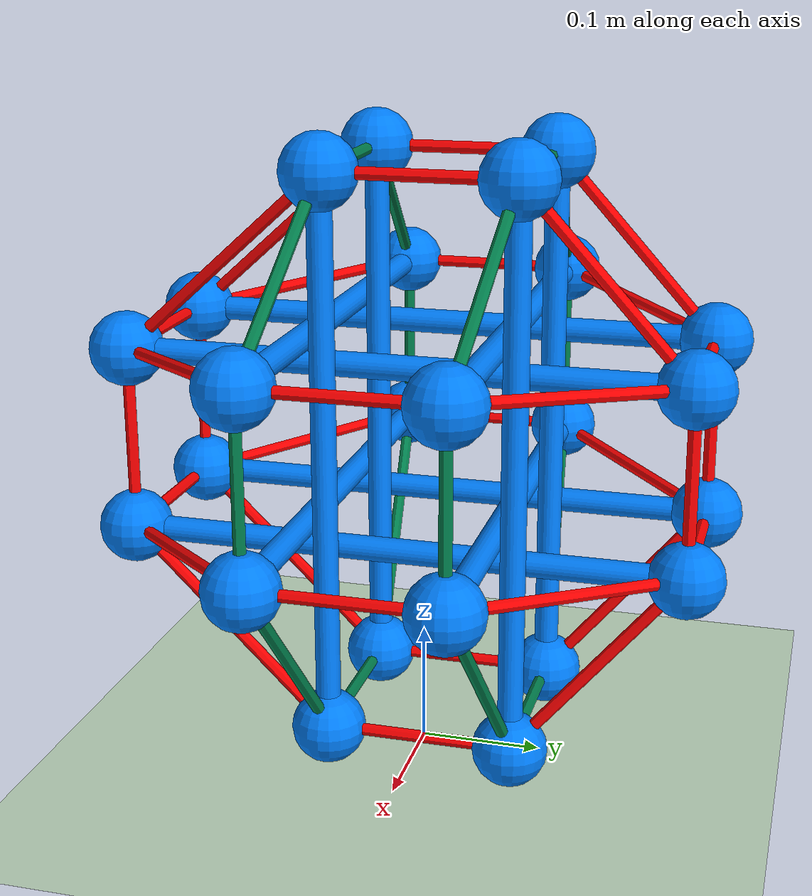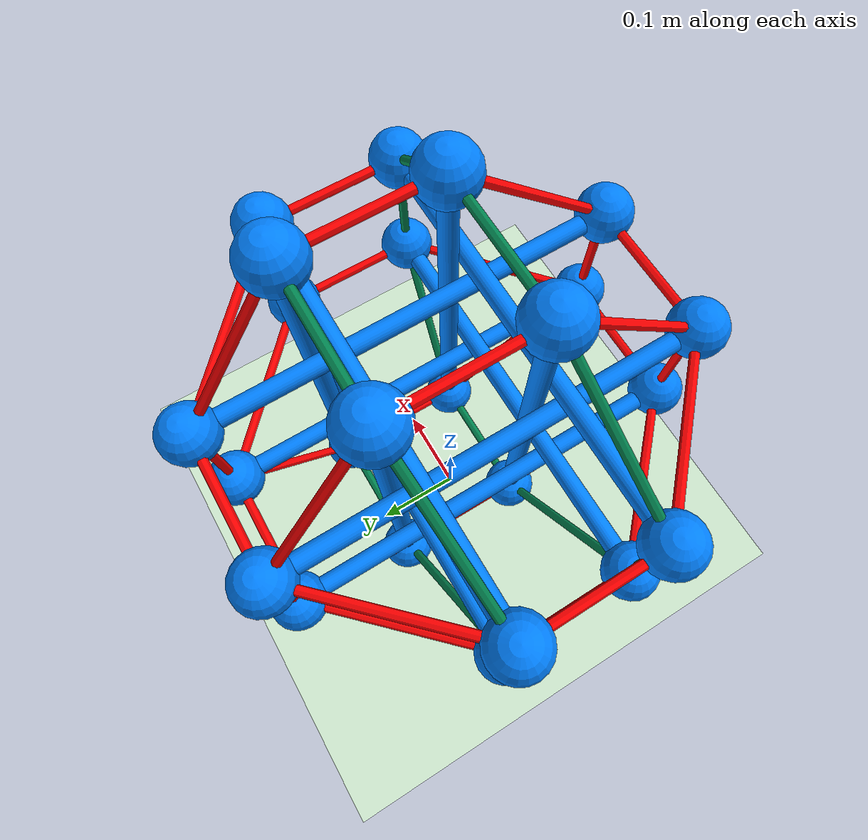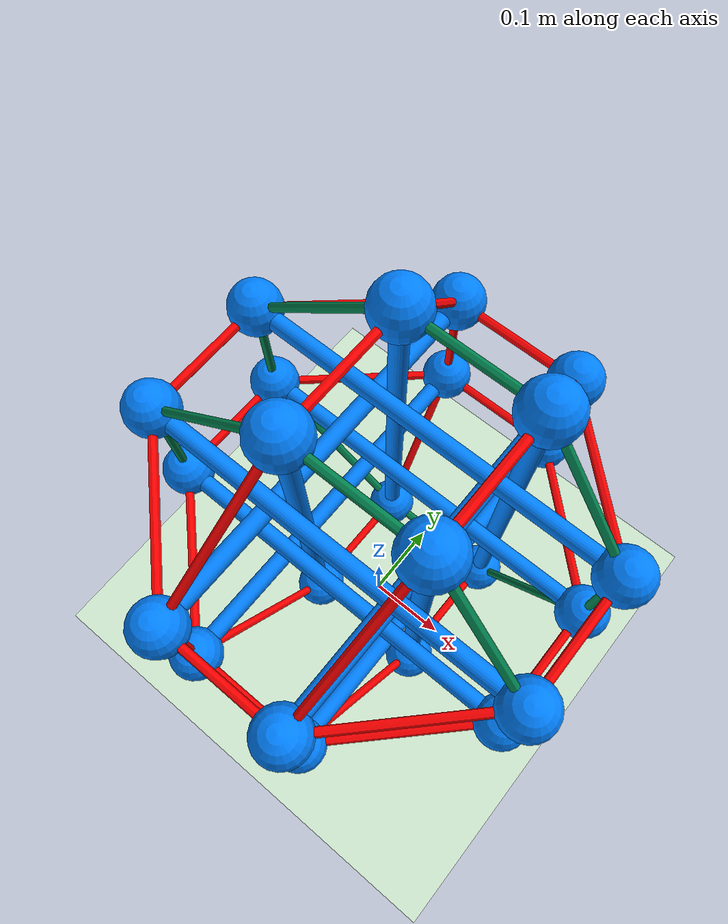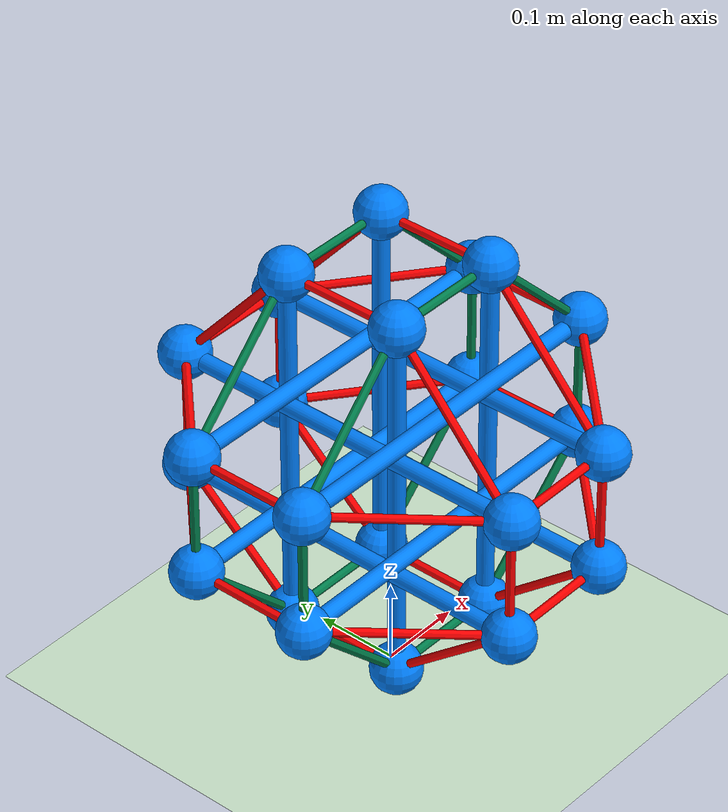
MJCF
<mujoco model="Tensegrity_12bar (v1.0)">
	<compiler angle="degree" inertiafromgeom="true"/>

	<option timestep="0.01" iterations="50" integrator="RK4" solver="PGS"  >
		<flag passive="disable" />
	</option>

	<default>
		<joint armature="1" damping="1"/>
    <geom conaffinity="1" condim="4" contype="1" material="geom" margin="0.001" rgba="0. 0.5 0.99 1"/>
		<site type="sphere" size="0.01"/>
    <tendon limited="true" range="0.1 0.15" width="0.005" rgba="0.99 0. 0. 1"  stiffness="1" damping="0.5"/>
		<general gear="50000" biastype="affine" biasprm="0 0 0" dyntype="filter" dynprm="5 0 0" gainprm="1 0 0" ctrllimited="true" ctrlrange="-1.5 0." />
	</default>

	<asset>
			<texture builtin="gradient" height="100" rgb1=".4 .5 .6" rgb2="0 0 0" type="skybox" width="100"/>
			<texture builtin="flat" height="1278" mark="cross" markrgb="1 1 1" name="texgeom" random="0.01" rgb1="0.8 0.6 0.4" rgb2="0.8 0.6 0.4" type="cube" width="127"/>
			<texture builtin="checker" height="100" name="texplane" rgb1="0 0 0" rgb2="0.8 0.8 0.8" type="2d" width="100"/>
			<material name="MatPlane" reflectance="0.5" shininess="1" specular="1" texrepeat="60 60" texture="texplane"/>
			<material name="geom" texture="texgeom" texuniform="true"/>
	</asset>

    <worldbody>

		<light cutoff="100" diffuse="1 1 1" dir="-0 0 -1.3" directional="true" exponent="1" pos="0 0 1.3" specular=".1 .1 .1"/>
    <geom condim="3" friction="1 1 1" material="MatPlane" name="floor" pos="0 0 0" rgba="0.8 0.9 0.8 1" size="20 20 0.125" type="plane"/>

        <!-- ===== RODS =====-->
        <body name="rod1_2" pos="0 0 0">
      <geom name="r12"  fromto="0.095 0.095 0.50 0.095 0.095 0.05"  density="1000" type="cylinder" size="0.01" />
      <joint name="move1_2" type="free"/>
			<body name="rod1_2_child1">
				<geom name="r12_child1" pos="0.095 0.095 0.50" density="5000" mass="5" type="sphere"  size="0.03" friction="10 0.005 0.0001"/>
				<site name="s1" pos="0.095 0.095 0.50"/>
				<joint type="ball" pos="0.095 0.095 0.50"/>
			</body>
			<body name="rod1_2_child2">
				<geom name="r12_child2" pos="0.095 0.095 0.05" density="5000" mass="5" type="sphere"  size="0.03" friction="10 0.005 0.0001"/>
				<site name="s2" pos="0.095 0.095 0.05" />
				<joint type="ball" pos="0.095 0.095 0.05"/>
			</body>
		</body>

        <body name="rod3_4" pos="0 0 0">
      <geom name="r34"  fromto="-0.055 0.095 0.50 -0.055 0.095 0.05"  density="1000" type="cylinder" size="0.01" />
      <joint name="move3_4" type="free"/>
			<body name="rod3_4_child1">
				<geom name="r34_child1" pos="-0.055 0.095 0.50" density="5000" mass="5" type="sphere"  size="0.03" friction="10 0.005 0.0001"/>
				<site name="s3" pos="-0.055 0.095 0.50"/>
				<joint type="ball" pos="-0.055 0.095 0.50"/>
			</body>
			<body name="rod3_4_child2">
				<geom name="r34_child2" pos="-0.055 0.095 0.05" density="5000" mass="5" type="sphere"  size="0.03" friction="10 0.005 0.0001"/>
				<site name="s4" pos="-0.055 0.095 0.05" />
				<joint type="ball" pos="-0.055 0.095 0.05"/>
			</body>
		</body>

        <body name="rod5_6" pos="0 0 0">
      <geom name="r56"  fromto="-0.055 -0.055 0.50 -0.055 -0.055 0.05"  density="1000" type="cylinder" size="0.01" />
      <joint name="move5_6" type="free"/>
			<body name="rod5_6_child1">
				<geom name="r56_child1" pos="-0.055 -0.055 0.50" density="5000" mass="5" type="sphere"  size="0.03" friction="10 0.005 0.0001"/>
				<site name="s5" pos="-0.055 -0.055 0.50"/>
				<joint type="ball" pos="-0.055 -0.055 0.50"/>
			</body>
			<body name="rod5_6_child2">
				<geom name="r56_child2" pos="-0.055 -0.055 0.05" density="5000" mass="5" type="sphere"  size="0.03" friction="10 0.005 0.0001"/>
				<site name="s6" pos="-0.055 -0.055 0.05" />
				<joint type="ball" pos="-0.055 -0.055 0.05"/>
			</body>
		</body>

        <body name="rod7_8" pos="0 0 0">
      <geom name="r78"  fromto="0.095 -0.055 0.50 0.095 -0.055 0.05"  density="1000" type="cylinder" size="0.01" />
      <joint name="move7_8" type="free"/>
			<body name="rod7_8_child1">
				<geom name="r78_child1" pos="0.095 -0.055 0.50" density="5000" mass="5" type="sphere"  size="0.03" friction="10 0.005 0.0001"/>
				<site name="s7" pos="0.095 -0.055 0.50"/>
				<joint type="ball" pos="0.095 -0.055 0.50"/>
			</body>
			<body name="rod7_8_child2">
				<geom name="r78_child2" pos="0.095 -0.055 0.05" density="5000" mass="5" type="sphere"  size="0.03" friction="10 0.005 0.0001"/>
				<site name="s8" pos="0.095 -0.055 0.05" />
				<joint type="ball" pos="0.095 -0.055 0.05"/>
			</body>
		</body>

        <body name="rod9_10" pos="0 0 0">
      <geom name="r910"  fromto="0.075 0.225 0.35 0.075 -0.225 0.35"  density="1000" type="cylinder" size="0.01" />
      <joint name="move9_10" type="free"/>
			<body name="rod9_10_child1">
				<geom name="r910_child1" pos="0.075 0.225 0.35" density="5000" mass="5" type="sphere"  size="0.03" friction="10 0.005 0.0001"/>
				<site name="s9" pos="0.075 0.225 0.35"/>
				<joint type="ball" pos="0.075 0.225 0.35"/>
			</body>
			<body name="rod9_10_child2">
				<geom name="r910_child2" pos="0.075 -0.225 0.35" density="5000" mass="5" type="sphere"  size="0.03" friction="10 0.005 0.0001"/>
				<site name="s10" pos="0.075 -0.225 0.35" />
				<joint type="ball" pos="0.075 -0.225 0.35"/>
			</body>
		</body>

        <body name="rod11_12" pos="0 0 0">
      <geom name="r1112"  fromto="0.075 0.225 0.20 0.075 -0.225 0.20"  density="1000" type="cylinder" size="0.01" />
      <joint name="move11_12" type="free"/>
			<body name="rod11_12_child1">
				<geom name="r1112_child1" pos="0.075 0.225 0.20" density="5000" mass="5" type="sphere"  size="0.03" friction="10 0.005 0.0001"/>
				<site name="s11" pos="0.075 0.225 0.20"/>
				<joint type="ball" pos="0.075 0.225 0.20"/>
			</body>
			<body name="rod11_12_child2">
				<geom name="r1112_child2" pos="0.075 -0.225 0.20" density="5000" mass="5" type="sphere"  size="0.03" friction="10 0.005 0.0001"/>
				<site name="s12" pos="0.075 -0.225 0.20" />
				<joint type="ball" pos="0.075 -0.225 0.20"/>
			</body>
		</body>

        <body name="rod13_14" pos="0 0 0">
      <geom name="r1314"  fromto="-0.075 0.225 0.20 -0.075 -0.225 0.20"  density="1000" type="cylinder" size="0.01" />
      <joint name="move13_14" type="free"/>
			<body name="rod13_14_child1">
				<geom name="r1314_child1" pos="-0.075 0.225 0.20" density="5000" mass="5" type="sphere"  size="0.03" friction="10 0.005 0.0001"/>
				<site name="s13" pos="-0.075 0.225 0.20"/>
				<joint type="ball" pos="-0.075 0.225 0.20"/>
			</body>
			<body name="rod13_14_child2">
				<geom name="r1314_child2" pos="-0.075 -0.225 0.20" density="5000" mass="5" type="sphere"  size="0.03" friction="10 0.005 0.0001"/>
				<site name="s14" pos="-0.075 -0.225 0.20" />
				<joint type="ball" pos="-0.075 -0.225 0.20"/>
			</body>
		</body>

        <body name="rod15_16" pos="0 0 0">
      <geom name="r1516"  fromto="-0.075 0.225 0.35 -0.075 -0.225 0.35"  density="1000" type="cylinder" size="0.01" />
      <joint name="move15_16" type="free"/>
			<body name="rod15_16_child1">
				<geom name="r1516_child1" pos="-0.075 0.225 0.35" density="5000" mass="5" type="sphere"  size="0.03" friction="10 0.005 0.0001"/>
				<site name="s15" pos="-0.075 0.225 0.35"/>
				<joint type="ball" pos="-0.075 0.225 0.35"/>
			</body>
			<body name="rod15_16_child2">
				<geom name="r1516_child2" pos="-0.075 -0.225 0.35" density="5000" mass="5" type="sphere"  size="0.03" friction="10 0.005 0.0001"/>
				<site name="s16" pos="-0.075 -0.225 0.35" />
				<joint type="ball" pos="-0.075 -0.225 0.35"/>
			</body>
		</body>

        <body name="rod17_18" pos="0 0 0">
      <geom name="r1718"  fromto="0.225 0.075 0.37 -0.225 0.075 0.37"  density="1000" type="cylinder" size="0.01" />
      <joint name="move17_18" type="free"/>
			<body name="rod17_18_child1">
				<geom name="r1718_child1" pos="0.225 0.075 0.37" density="5000" mass="5" type="sphere"  size="0.03" friction="10 0.005 0.0001"/>
				<site name="s17" pos="0.225 0.075 0.37"/>
				<joint type="ball" pos="0.225 0.075 0.37"/>
			</body>
			<body name="rod17_18_child2">
				<geom name="r1718_child2" pos="-0.225 0.075 0.37" density="5000" mass="5" type="sphere"  size="0.03" friction="10 0.005 0.0001"/>
				<site name="s18" pos="-0.225 0.075 0.37" />
				<joint type="ball" pos="-0.225 0.075 0.37"/>
			</body>
		</body>

        <body name="rod19_20" pos="0 0 0">
      <geom name="r1920"  fromto="0.225 -0.075 0.37 -0.225 -0.075 0.37"  density="1000" type="cylinder" size="0.01" />
      <joint name="move19_20" type="free"/>
			<body name="rod18_20_child1">
				<geom name="r1920_child1" pos="0.225 -0.075 0.37" density="5000" mass="5" type="sphere"  size="0.03" friction="10 0.005 0.0001"/>
				<site name="s19" pos="0.225 -0.075 0.37"/>
				<joint type="ball" pos="0.225 -0.075 0.37"/>
			</body>
			<body name="rod19_20_child2">
				<geom name="r1920_child2" pos="-0.225 -0.075 0.37" density="5000" mass="5" type="sphere"  size="0.03" friction="10 0.005 0.0001"/>
				<site name="s20" pos="-0.225 -0.075 0.37" />
				<joint type="ball" pos="-0.225 -0.075 0.37"/>
			</body>
		</body>

        <body name="rod21_22" pos="0 0 0">
      <geom name="r2122"  fromto="0.225 -0.075 0.22 -0.225 -0.075 0.22"  density="1000" type="cylinder" size="0.01" />
      <joint name="move21_22" type="free"/>
			<body name="rod21_22_child1">
				<geom name="r2122_child1" pos="0.225 -0.075 0.22" density="5000" mass="5" type="sphere"  size="0.03" friction="10 0.005 0.0001"/>
				<site name="s21" pos="0.225 -0.075 0.22"/>
				<joint type="ball" pos="0.225 -0.075 0.22"/>
			</body>
			<body name="rod21_22_child2">
				<geom name="r2122_child2" pos="-0.225 -0.075 0.22" density="5000" mass="5" type="sphere"  size="0.03" friction="10 0.005 0.0001"/>
				<site name="s22" pos="-0.225 -0.075 0.22" />
				<joint type="ball" pos="-0.225 -0.075 0.22"/>
			</body>
		</body>

        <body name="rod23_24" pos="0 0 0">
      <geom name="r2324"  fromto="0.225 0.075 0.22 -0.225 0.075 0.22"  density="1000" type="cylinder" size="0.01" />
      <joint name="move23_24" type="free"/>
			<body name="rod23_24_child1">
				<geom name="r2324_child1" pos="0.225 0.075 0.22" density="5000" mass="5" type="sphere"  size="0.03" friction="10 0.005 0.0001"/>
				<site name="s23" pos="0.225 0.075 0.22"/>
				<joint type="ball" pos="0.225 0.075 0.22"/>
			</body>
			<body name="rod23_24_child2">
				<geom name="r2324_child2" pos="-0.225 0.075 0.22" density="5000" mass="5" type="sphere"  size="0.03" friction="10 0.005 0.0001"/>
				<site name="s24" pos="-0.225 0.075 0.22" />
				<joint type="ball" pos="-0.225 0.075 0.22"/>
			</body>
		</body>
    </worldbody>

    0 3 4
    <!-- TENDONS-->
    <tendon>
        <spatial name="td_0" rgba="0 .5 .3 1" range="0.1 0.6">
            <site site="s1"/>
            <site site="s3"/>
        </spatial>

        <spatial name="td_1">
            <site site="s1"/>
            <site site="s7"/>
        </spatial>

        <spatial name="td_2">
            <site site="s1"/>
            <site site="s9"/>
        </spatial>

        <spatial name="td_3" rgba="0 .5 .3 1" range="0.1 0.6">
            <site site="s1"/>
            <site site="s17"/>
        </spatial>

         <spatial name="td_4" rgba="0 .5 .3 1" range="0.1 0.6">
            <site site="s2"/>
            <site site="s4"/>
        </spatial>

        <spatial name="td_5">
            <site site="s2"/>
            <site site="s8"/>
        </spatial>

        <spatial name="td_6">
            <site site="s2"/>
            <site site="s11"/>
        </spatial>

        <spatial name="td_7" rgba="0 .5 .3 1" range="0.1 0.6">
            <site site="s2"/>
            <site site="s23"/>
        </spatial>

         <spatial name="td_8">
            <site site="s3"/>
            <site site="s5"/>
        </spatial>

        <spatial name="td_9">
            <site site="s3"/>
            <site site="s15"/>
        </spatial>

        <spatial name="td_10" rgba="0 .5 .3 1" range="0.1 0.6">
            <site site="s3"/>
            <site site="s18"/>
        </spatial>

         <spatial name="td_11">
            <site site="s4"/>
            <site site="s6"/>
        </spatial>

        <spatial name="td_12">
            <site site="s4"/>
            <site site="s13"/>
        </spatial>

        <spatial name="td_13" rgba="0 .5 .3 1" range="0.1 0.6">
            <site site="s4"/>
            <site site="s24"/>
        </spatial>

        <spatial name="td_14" rgba="0 .5 .3 1" range="0.1 0.6">
            <site site="s5"/>
            <site site="s7"/>
        </spatial>

        <spatial name="td_15">
            <site site="s5"/>
            <site site="s16"/>
        </spatial>

        <spatial name="td_16" rgba="0 .5 .3 1" range="0.1 0.6">
            <site site="s5"/>
            <site site="s20"/>
        </spatial>

        <spatial name="td_17" rgba="0 .5 .3 1" range="0.1 0.6">
            <site site="s6"/>
            <site site="s8"/>
        </spatial>

        <spatial name="td_18">
            <site site="s6"/>
            <site site="s14"/>
        </spatial>

        <spatial name="td_19" rgba="0 .5 .3 1" range="0.1 0.6">
            <site site="s6"/>
            <site site="s22"/>
        </spatial>

        <spatial name="td_20">
            <site site="s7"/>
            <site site="s10"/>
        </spatial>

        <spatial name="td_21" rgba="0 .5 .3 1" range="0.1 0.6">
            <site site="s7"/>
            <site site="s19"/>
        </spatial>

        <spatial name="td_22">
            <site site="s8"/>
            <site site="s12"/>
        </spatial>

        <spatial name="td_23" rgba="0 .5 .3 1" range="0.1 0.6">
            <site site="s8"/>
            <site site="s21"/>
        </spatial>

        <spatial name="td_24">
            <site site="s9"/>
            <site site="s11"/>
        </spatial>

        <spatial name="td_25">
            <site site="s9"/>
            <site site="s15"/>
        </spatial>

        <spatial name="td_26">
            <site site="s9"/>
            <site site="s17"/>
        </spatial>

        <spatial name="td_27">
            <site site="s10"/>
            <site site="s12"/>
        </spatial>

        <spatial name="td_28">
            <site site="s10"/>
            <site site="s16"/>
        </spatial>

        <spatial name="td_29">
            <site site="s10"/>
            <site site="s19"/>
        </spatial>

        <spatial name="td_30">
            <site site="s11"/>
            <site site="s13"/>
        </spatial>

        <spatial name="td_31">
            <site site="s11"/>
            <site site="s23"/>
        </spatial>

        <spatial name="td_32">
            <site site="s12"/>
            <site site="s14"/>
        </spatial>

        <spatial name="td_33">
            <site site="s12"/>
            <site site="s21"/>
        </spatial>

        <spatial name="td_34">
            <site site="s13"/>
            <site site="s15"/>
        </spatial>

        <spatial name="td_35">
            <site site="s13"/>
            <site site="s24"/>
        </spatial>

        <spatial name="td_36">
            <site site="s14"/>
            <site site="s16"/>
        </spatial>

        <spatial name="td_37">
            <site site="s14"/>
            <site site="s22"/>
        </spatial>

        <spatial name="td_38">
            <site site="s15"/>
            <site site="s18"/>
        </spatial>

        <spatial name="td_39">
            <site site="s16"/>
            <site site="s20"/>
        </spatial>

        <spatial name="td_40">
            <site site="s17"/>
            <site site="s19"/>
        </spatial>

        <spatial name="td_41" rgba="0 .5 .3 1" range="0.1 0.6">
            <site site="s17"/>
            <site site="s23"/>
        </spatial>

        <spatial name="td_42">
            <site site="s18"/>
            <site site="s20"/>
        </spatial>

        <spatial name="td_43" rgba="0 .5 .3 1" range="0.1 0.6">
            <site site="s18"/>
            <site site="s24"/>
        </spatial>

        <spatial name="td_44" rgba="0 .5 .3 1" range="0.1 0.6">
            <site site="s19"/>
            <site site="s21"/>
        </spatial>

        <spatial name="td_45" rgba="0 .5 .3 1" range="0.1 0.6">
            <site site="s20"/>
            <site site="s22"/>
        </spatial>

        <spatial name="td_46">
            <site site="s21"/>
            <site site="s23"/>
        </spatial>

        <spatial name="td_47">
            <site site="s22"/>
            <site site="s24"/>
        </spatial>

    </tendon>

    <!-- ACTUATION -->

    <actuator>
            <general name="motor_td_0" tendon="td_0" />
            <general name="motor_td_3" tendon="td_3" />
            <general name="motor_td_4" tendon="td_4" />
            <general name="motor_td_7" tendon="td_7" />
            <general name="motor_td_10" tendon="td_10" />
            <general name="motor_td_13" tendon="td_13" />
            <general name="motor_td_14" tendon="td_14" />
            <general name="motor_td_16" tendon="td_16" />
            <general name="motor_td_17" tendon="td_17" />
            <general name="motor_td_19" tendon="td_19" />
            <general name="motor_td_21" tendon="td_21" />
            <general name="motor_td_23" tendon="td_23" />

            <general name="motor_td_41" tendon="td_41" />
            <general name="motor_td_43" tendon="td_43" />
            <general name="motor_td_44" tendon="td_44" />
            <general name="motor_td_45" tendon="td_45" />

    </actuator>
</mujoco>
